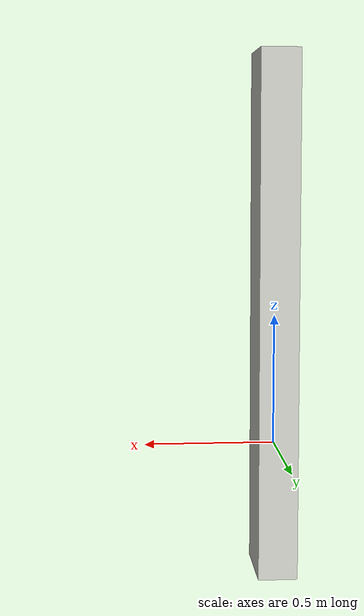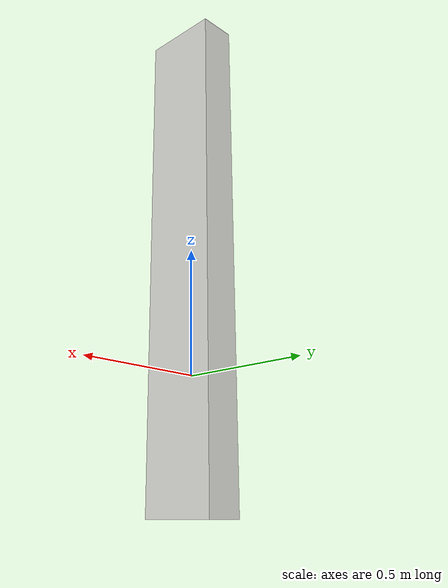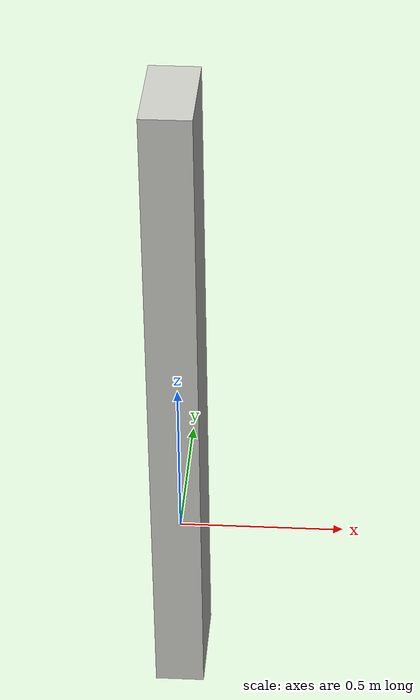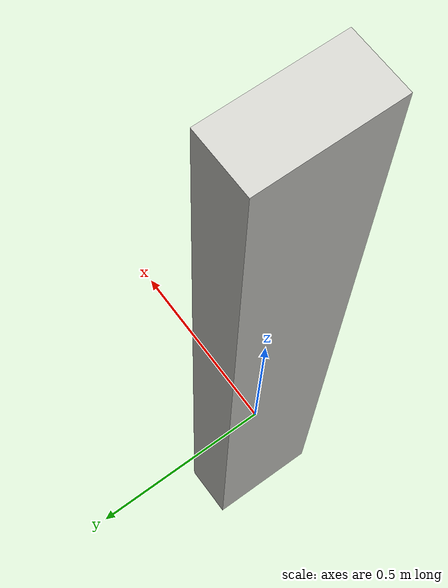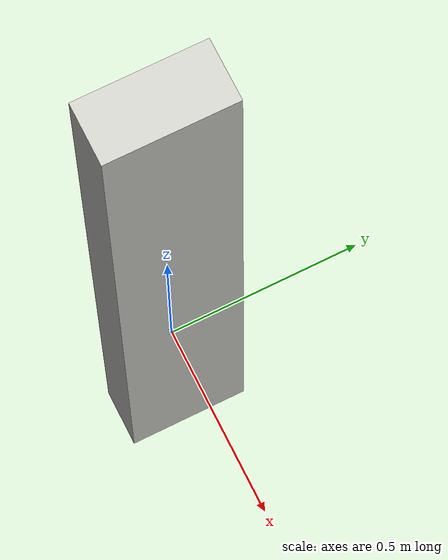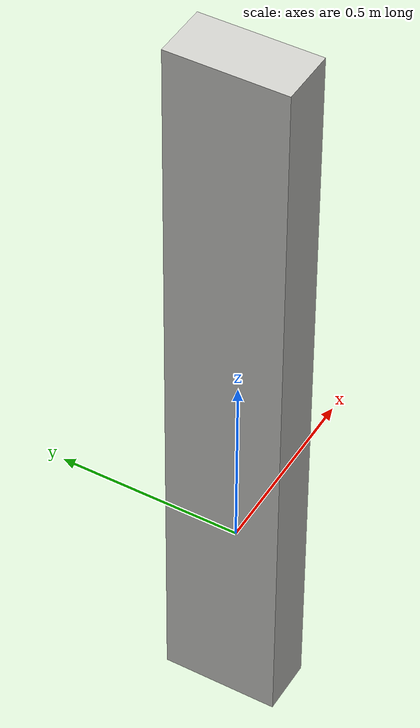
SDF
<?xml version='1.0'?>
<sdf version='1.6'>
  <model name='wall_3125'>
    <pose frame=''>0 0 0.5 0 -0 0</pose>
    <link name='Wall_45'>
      <collision name='Wall_45_Collision'>
        <geometry>
          <box>
            <size>0.15 0.3125 2</size>
          </box>
        </geometry>
        <pose frame=''>0 0 0 0 -0 0</pose>
      </collision>
      <visual name='Wall_45_Visual'>
        <pose frame=''>0 0 0 0 -0 0</pose>
        <geometry>
          <box>
            <size>0.15 0.3125 2</size>
          </box>
        </geometry>
        <material>
          <script>
            <uri>file://media/materials/scripts/gazebo.material</uri>
            <name>Gazebo/CeilingTiled</name>
          </script>
          <ambient>1 1 1 1</ambient>
        </material>
        <meta>
          <layer>0</layer>
        </meta>
      </visual>
      <pose frame=''>0 0 0 0 -0 0</pose>
    </link>
    <static>1</static>
  </model>
</sdf>
